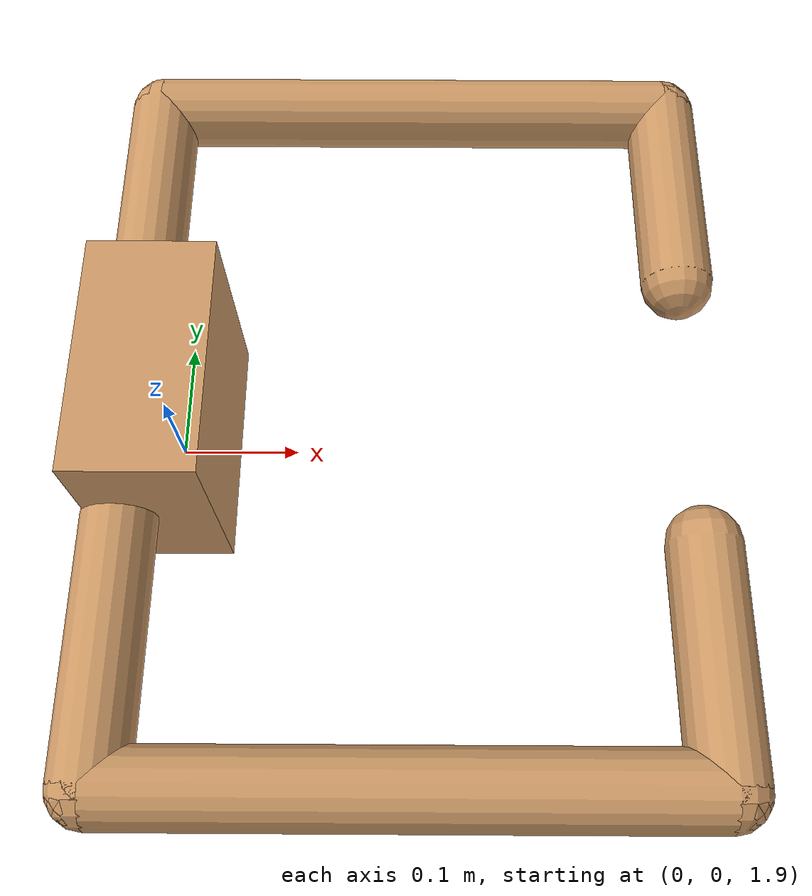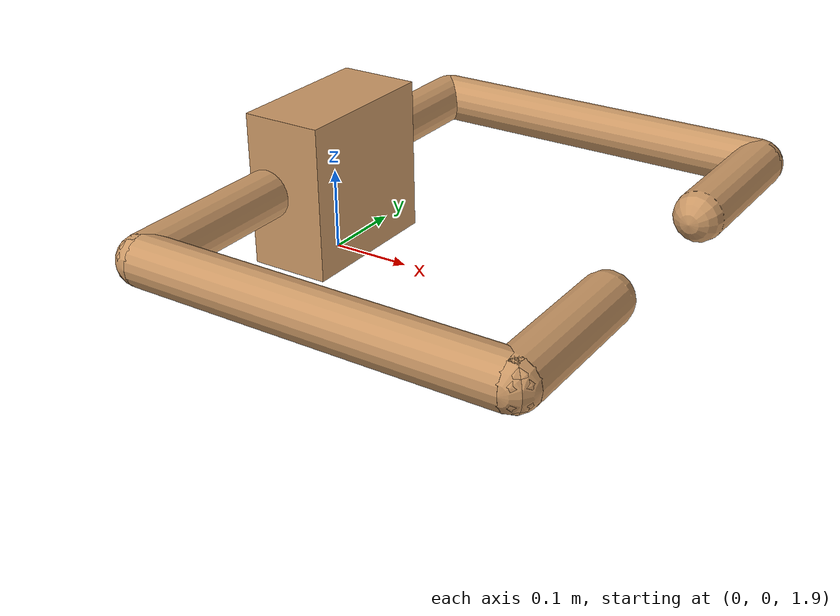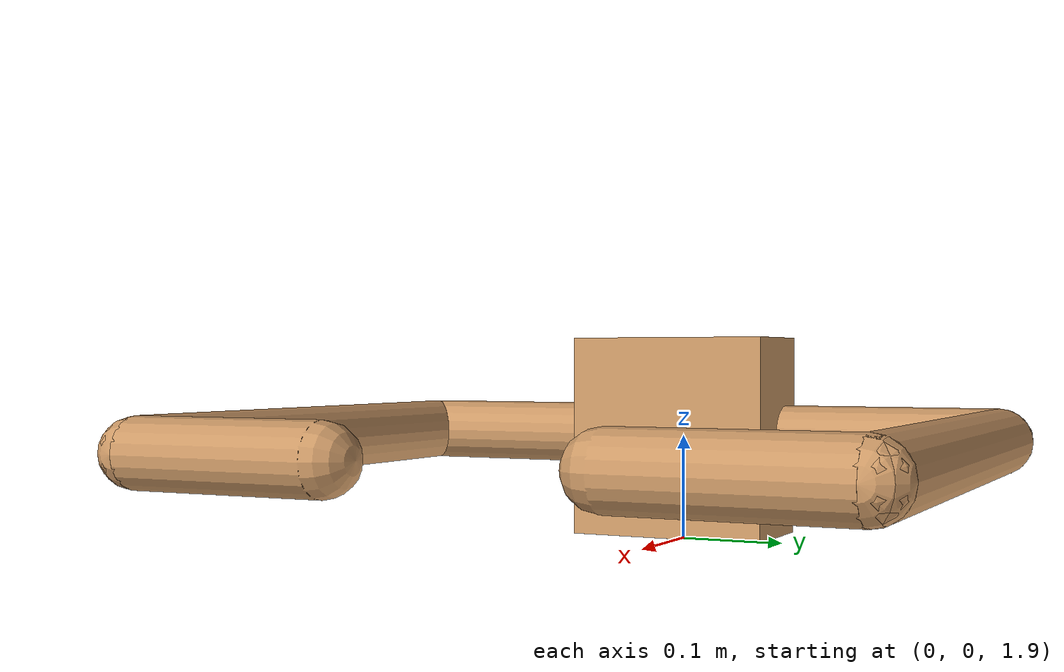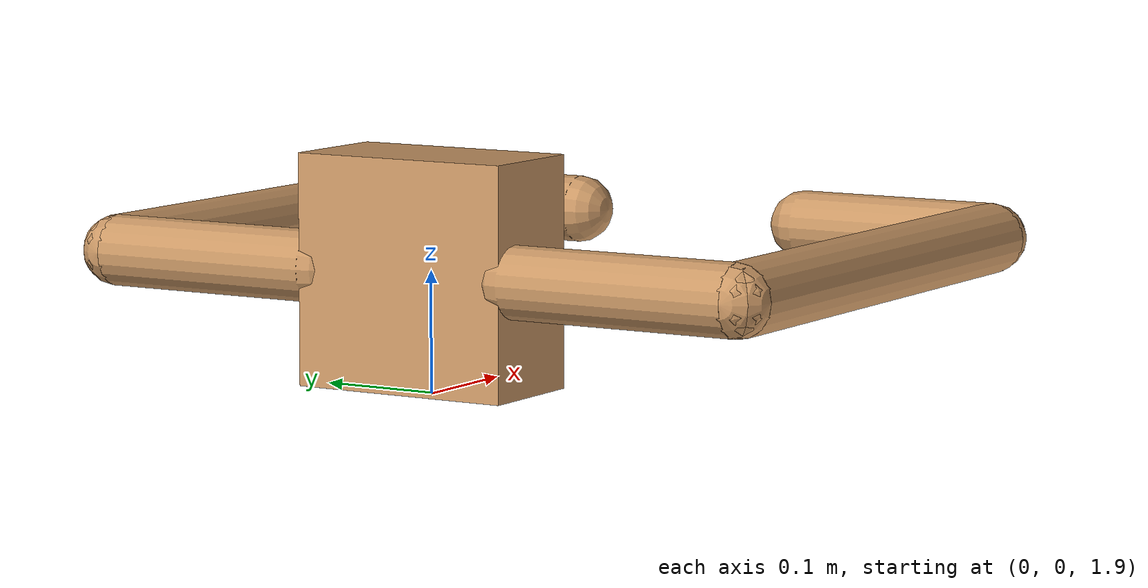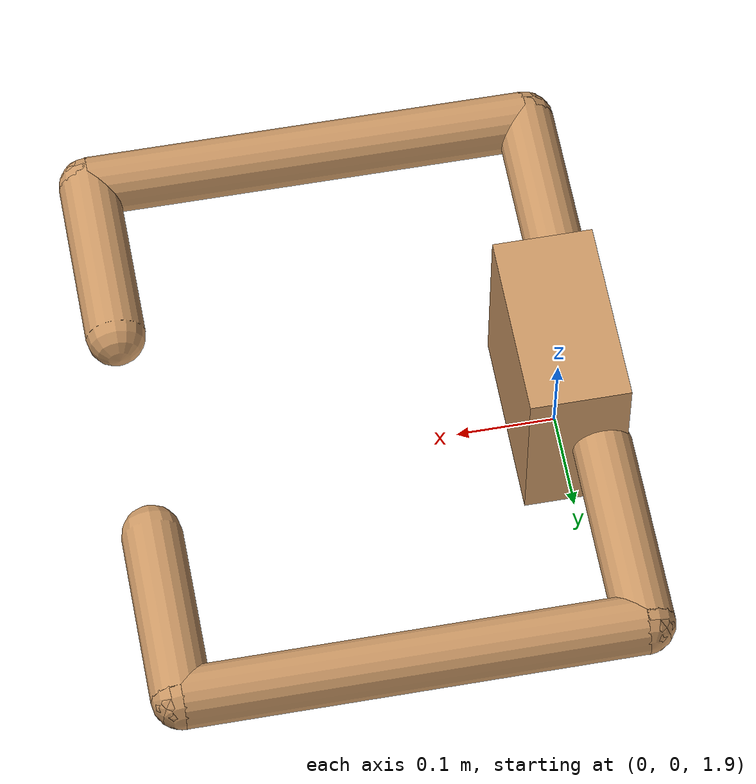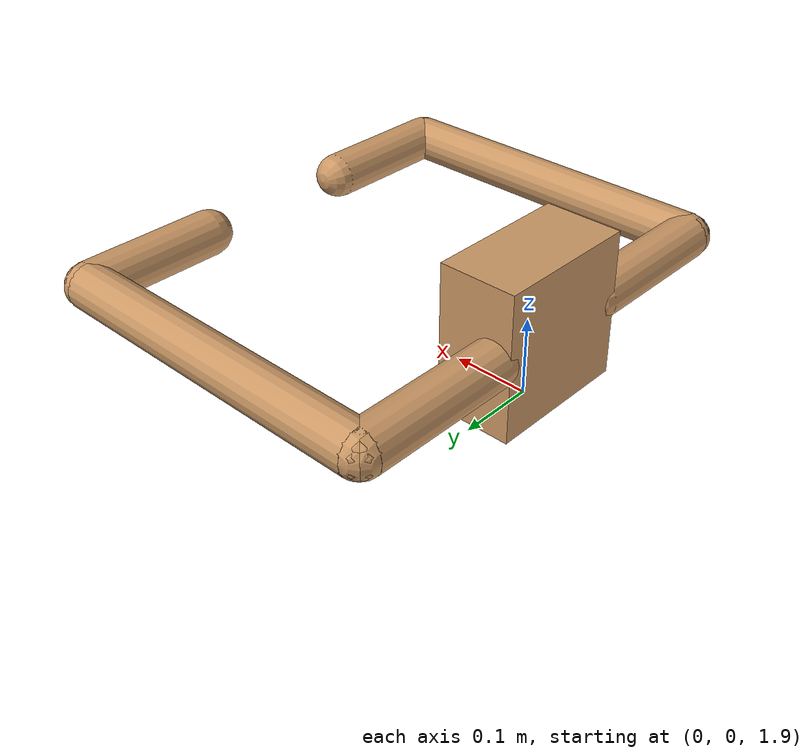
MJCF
<?xml version="1.0" encoding="utf-8"?>
<mujoco model="srl_3">
	<compiler/>
	<option gravity="0 0 0"/>
	<size nconmax="500" njmax="1000"/>
	<custom/>
	<default>
		<joint armature="1" damping="1" limited="true"/>
		<geom conaffinity="0" condim="3" margin="0.01" rgba="0.8 0.6 0.4 1"/>
	</default>
	<asset>
		<texture builtin="gradient" height="100" rgb1="1 1 1" rgb2="0 0 0" type="skybox" width="100"/>
		<texture builtin="flat" height="1278" mark="cross" markrgb="1 1 1" name="texgeom" random="0.01" rgb1="0.8 0.6 0.4" rgb2="0.8 0.6 0.4" type="cube" width="127"/>
		<texture builtin="checker" height="100" name="texplane" rgb1="0 0 0" rgb2="0.8 0.8 0.8" type="2d" width="100"/>
		<material name="MatPlane" reflectance="0.5" shininess="1" specular="1" texrepeat="60 60" texture="texplane"/>
		<material name="geom" texture="texgeom" texuniform="true"/>
		<material name="SRL" rgba="0.66 0.65 0.68 1"/>
	</asset>
	<worldbody>
		<light cutoff="100" diffuse="1 1 1" dir="0 0 -1.3" directional="true" exponent="1" pos="0 0 1.3" specular="0.1 0.1 0.1"/>
		<geom conaffinity="1" condim="3" material="MatPlane" name="floor" pos="0 0 0" rgba="0.8 0.9 0.8 1" size="40 40 40" type="plane"/>
		<body name="SRL_root" pos="0 0 2" quat="0.0 0.0 0.0 1.0">
			<geom material="SRL" name="SRL_geom_root" pos="0 0 0" size="0.05 0.095 0.095" type="box"/>
			<body name="SRL_leg2" pos="0.025 0.095 0" quat="0.70711 0.0 0.0 0.70711">
				<geom fromto="0 0 0 0.2 0 0" material="SRL" name="SRL_geom_leg2" size="0.03" type="capsule"/>
				<joint axis="0 0 1" name="SRL_joint_joint11" pos="0 0 0" range="-45 45" type="hinge"/>
				<joint axis="0 1 0" name="SRL_joint_joint12" pos="0 0 0" range="-45 45" type="hinge"/>
				<body name="SRL_shin11" pos="0.2 0 0" quat="0.70711 0.0 0.0 0.70711">
					<geom fromto="0 0 0 0.45 0 0" material="SRL" name="SRL_geom_shin11" size="0.03" type="capsule"/>
					<joint axis="0 1 0" name="SRL_joint_joint13" pos="0 0 0" range="-45 45" type="hinge"/>
					<body name="SRL_shin12" pos="0.45 0 0" quat="0.70711 0.0 0.0 0.70711">
						<geom fromto="0 0 0 0.18 0 0" material="SRL" name="SRL_geom_shin12" size="0.03" type="capsule"/>
						<joint axis="0 1 0" name="SRL_joint_joint14" pos="0 0 0" range="-45 45" type="hinge"/>
					</body>
				</body>
			</body>
			<body name="SRL_leg1" pos="0.025 -0.095 0" quat="0.70711 0.0 0.0 -0.70711">
				<geom fromto="0 0 0 0.2 0 0" material="SRL" name="SRL_geom_leg1" size="0.03" type="capsule"/>
				<joint axis="0 0 1" name="SRL_joint_joint01" pos="0 0 0" range="-45 45" type="hinge"/>
				<joint axis="0 1 0" name="SRL_joint_joint02" pos="0 0 0" range="-45 45" type="hinge"/>
				<body name="SRL_shin1" pos="0.2 0 0" quat="0.70711 0.0 0.0 -0.70711">
					<geom fromto="0 0 0 0.45 0 0" material="SRL" name="SRL_geom_shin1" size="0.03" type="capsule"/>
					<joint axis="0 1 0" name="SRL_joint_joint1" pos="0 0 0" range="-45 45" type="hinge"/>
					<body name="SRL_shin2" pos="0.45 0 0" quat="0.70711 0.0 0.0 -0.70711">
						<geom fromto="0 0 0 0.18 0 0" material="SRL" name="SRL_geom_shin2" size="0.03" type="capsule"/>
						<joint axis="0 1 0" name="SRL_joint_joint2" pos="0 0 0" range="-45 45" type="hinge"/>
					</body>
				</body>
			</body>
		</body>
	</worldbody>
	<actuator>
		<motor ctrllimited="true" ctrlrange="-1 1" joint="SRL_joint_joint11"/>
		<motor ctrllimited="true" ctrlrange="-1 1" joint="SRL_joint_joint12"/>
		<motor ctrllimited="true" ctrlrange="-1 1" joint="SRL_joint_joint13"/>
		<motor ctrllimited="true" ctrlrange="-1 1" joint="SRL_joint_joint14"/>
		<motor ctrllimited="true" ctrlrange="-1 1" joint="SRL_joint_joint01"/>
		<motor ctrllimited="true" ctrlrange="-1 1" joint="SRL_joint_joint02"/>
		<motor ctrllimited="true" ctrlrange="-1 1" joint="SRL_joint_joint1"/>
		<motor ctrllimited="true" ctrlrange="-1 1" joint="SRL_joint_joint2"/>
	</actuator>
</mujoco>
